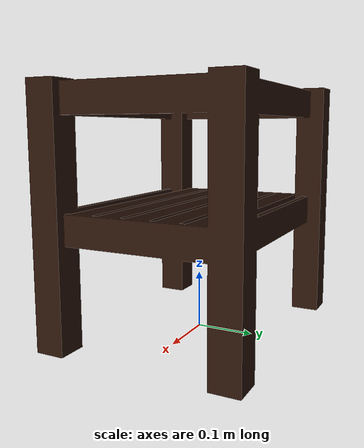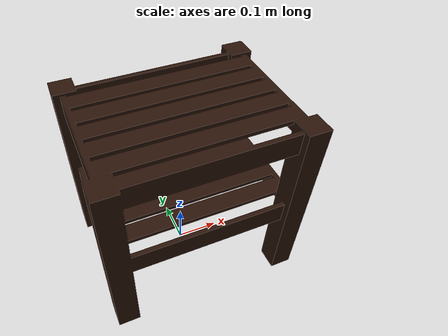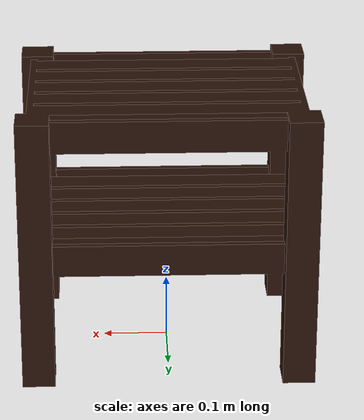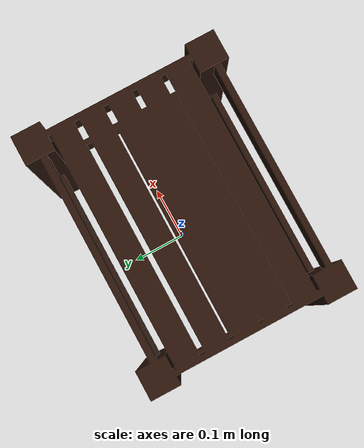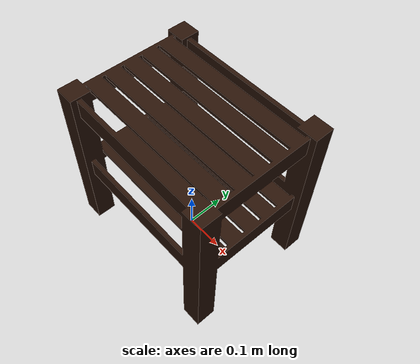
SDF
<?xml version='1.0'?>
<sdf version="1.4">
	<model name="bathroom_shelf1">
		<static>1</static>
		<link name="link">
			<visual name="mesh">
				<geometry>
					<mesh>
						<uri>model://meshes/bathroom_shelf1.dae</uri>
					</mesh>
				</geometry>
			</visual>
			<collision name="collider">
				<pose>0 0 0.215 0 0 0</pose>
				<geometry>
					<box>
						<size>0.45 0.35 0.43</size>
					</box>
				</geometry>
			</collision>
		</link>
	</model>
</sdf>
